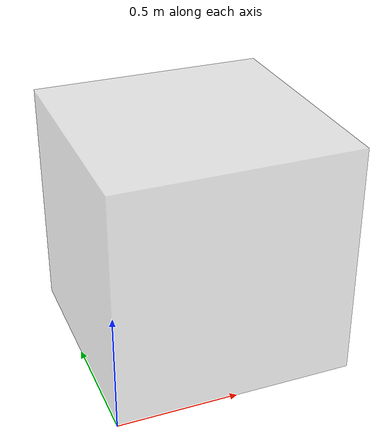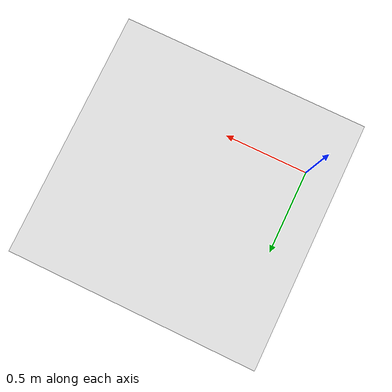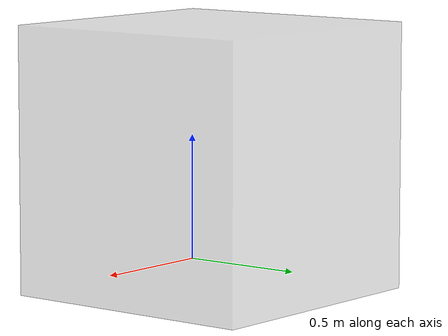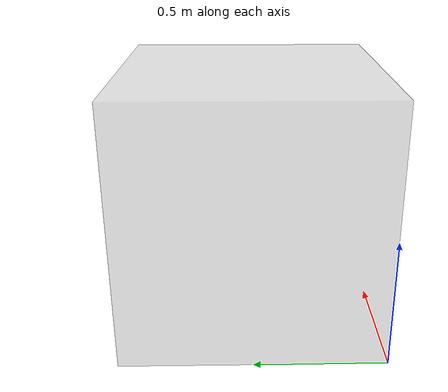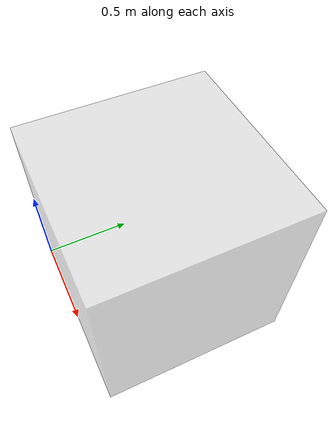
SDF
<?xml version="1.0" ?>
<sdf version="1.5">
  <model name="camera">
   <static>true</static>
    <link name="link">
      <pose>0.5 0.5 0.5 0 0 3.14</pose>
      <inertial>
        <mass>0.1</mass>
      </inertial>
      <collision name="collision">
        <geometry>
          <box>
            <size>1 1 1</size>
          </box>
        </geometry>
      </collision>
      <visual name="visual">
        <geometry>
          <box>
            <size>1 1 1</size>
          </box>
        </geometry>
        <transparency>0.6</transparency>
      </visual>
      <sensor name="camera" type="camera">
        <camera>
          <horizontal_fov>1.047</horizontal_fov>
          <image>
            <width>1280</width>
            <height>960</height>
          </image>
          <clip>
            <near>0.1</near>
            <far>100</far>
          </clip>
          <save enabled="true">
            <path>/home/sdafarra/gazebo_recorded_videos</path>
          </save>
        </camera>
        <always_on>1</always_on>
        <update_rate>30</update_rate>
        <visualize>true</visualize>
      </sensor>
      <kinematic>0</kinematic>
    </link>
  </model>
</sdf>
